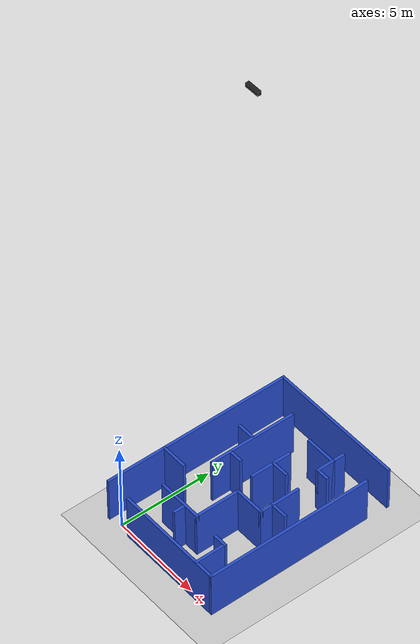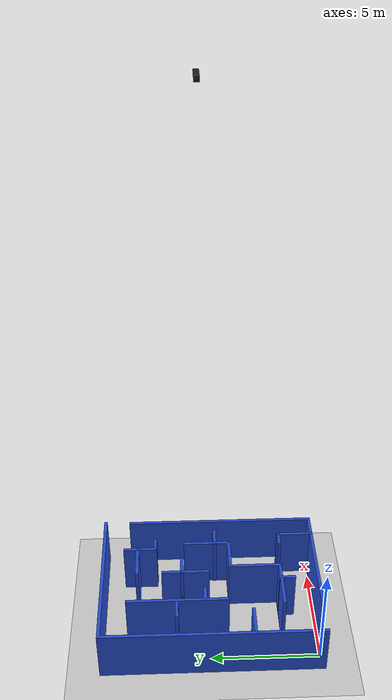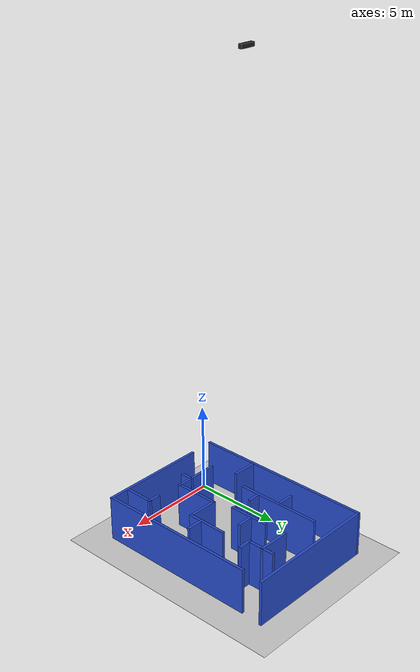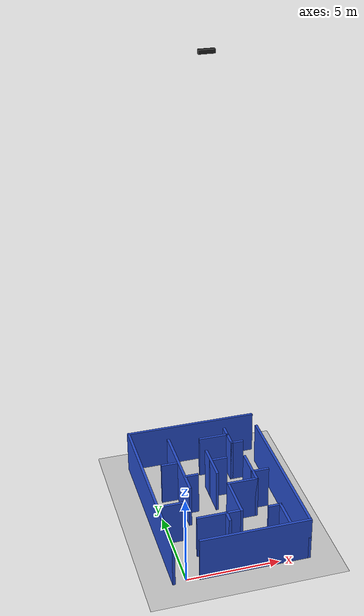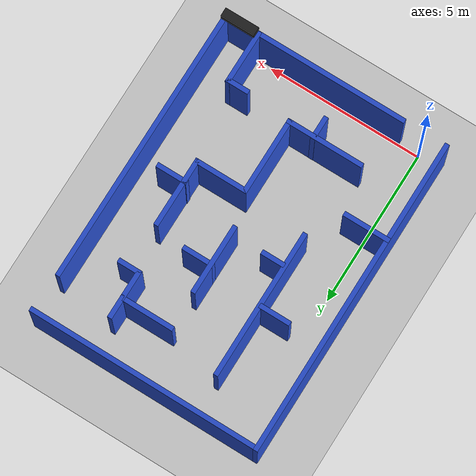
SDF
<sdf version="1.7">
 <world name="default">
  <light name="sun" type="directional">
   <pose>0 0 10 0 -0 0</pose>
   <diffuse>0.8 0.8 0.8 1</diffuse>
   <specular>0.2 0.2 0.2 1</specular>
   <attenuation>
    <range>1000</range>
    <constant>0.9</constant>
    <linear>0.01</linear>
    <quadratic>0.001</quadratic>
   </attenuation>
   <direction>-0.5 0.1 -0.9</direction>
   <spot><inner_angle>0</inner_angle><outer_angle>0</outer_angle><falloff>0</falloff></spot>
  </light>
  <model name="ground_plane">
   <static>1</static>
   <link name="link">
    <collision name="collision">
     <geometry><plane><normal>0 0 1</normal><size>100 100</size></plane></geometry>
     <surface><friction><ode><mu>100</mu><mu2>50</mu2></ode></friction></surface>
    </collision>
    <visual name="visual">
     <cast_shadows>0</cast_shadows>
     <geometry><plane><normal>0 0 1</normal><size>100 100</size></plane></geometry>
     <material>
      <script><uri>file://media/materials/scripts/gazebo.material</uri><name>Gazebo/Grey</name></script>
     </material>
    </visual>
   </link>
  </model>
  <gravity>0 0 -9.8</gravity>
  <magnetic_field>6e-06 2.3e-05 -4.2e-05</magnetic_field>
  <atmosphere type="adiabatic"/>
  <physics type="ode">
   <max_step_size>0.001</max_step_size>
   <real_time_factor>1</real_time_factor>
   <real_time_update_rate>1000</real_time_update_rate>
  </physics>
  <scene><ambient>0.4 0.4 0.4 1</ambient><background>0.7 0.7 0.7 1</background><shadows>1</shadows></scene>
  <spherical_coordinates>
   <surface_model>EARTH_WGS84</surface_model>
   <latitude_deg>0</latitude_deg>
   <longitude_deg>0</longitude_deg>
   <elevation>0</elevation>
   <heading_deg>0</heading_deg>
  </spherical_coordinates>
  <model name="obstacle_course_5">
   <pose>2.97704 4.93095 0 0 -0 0</pose>
   <link name="Wall_104">
    <collision name="Wall_104_Collision">
     <geometry><box><size>6 0.15 2.5</size></box></geometry>
     <pose>0 0 1.25 0 -0 0</pose>
    </collision>
    <visual name="Wall_104_Visual">
     <pose>0 0 1.25 0 -0 0</pose>
     <geometry><box><size>6 0.15 2.5</size></box></geometry>
     <material>
      <script><uri>file://media/materials/scripts/gazebo.material</uri><name>Gazebo/Blue</name></script>
      <ambient>0.12549 0.290196 0.529412 1</ambient>
     </material>
     <meta><layer>0</layer></meta>
    </visual>
    <pose>0.681457 -5.05025 0 0 -0 0</pose>
   </link>
   <link name="Wall_110">
    <collision name="Wall_110_Collision">
     <geometry><box><size>9 0.15 2.5</size></box></geometry>
     <pose>0 0 1.25 0 -0 0</pose>
    </collision>
    <visual name="Wall_110_Visual">
     <pose>0 0 1.25 0 -0 0</pose>
     <geometry><box><size>9 0.15 2.5</size></box></geometry>
     <material>
      <script><uri>file://media/materials/scripts/gazebo.material</uri><name>Gazebo/Blue</name></script>
      <ambient>0.12549 0.290196 0.529412 1</ambient>
     </material>
     <meta><layer>0</layer></meta>
    </visual>
    <pose>3.60646 -0.625252 0 0 -0 1.5708</pose>
   </link>
   <link name="Wall_116">
    <collision name="Wall_116_Collision">
     <geometry><box><size>4.75 0.15 2.5</size></box></geometry>
     <pose>0 0 1.25 0 -0 0</pose>
    </collision>
    <visual name="Wall_116_Visual">
     <pose>0 0 1.25 0 -0 0</pose>
     <geometry><box><size>4.75 0.15 2.5</size></box></geometry>
     <material>
      <script><uri>file://media/materials/scripts/gazebo.material</uri><name>Gazebo/Blue</name></script>
      <ambient>0.12549 0.290196 0.529412 1</ambient>
     </material>
     <meta><layer>0</layer></meta>
    </visual>
    <pose>-1.63089 1.54722 0 0 -0 -1.5708</pose>
   </link>
   <link name="Wall_118">
    <collision name="Wall_118_Collision">
     <geometry><box><size>1 0.15 2.5</size></box></geometry>
     <pose>0 0 1.25 0 -0 0</pose>
    </collision>
    <visual name="Wall_118_Visual">
     <pose>0 0 1.25 0 -0 0</pose>
     <geometry><box><size>1 0.15 2.5</size></box></geometry>
     <material>
      <script><uri>file://media/materials/scripts/gazebo.material</uri><name>Gazebo/Blue</name></script>
      <ambient>0.12549 0.290196 0.529412 1</ambient>
     </material>
     <meta><layer>0</layer></meta>
    </visual>
    <pose>-2.12416 1.59435 0 0 -0 3.14159</pose>
   </link>
   <link name="Wall_126">
    <collision name="Wall_126_Collision">
     <geometry><box><size>2.5 0.15 2.5</size></box></geometry>
     <pose>0 0 1.25 0 -0 0</pose>
    </collision>
    <visual name="Wall_126_Visual">
     <pose>0 0 1.25 0 -0 0</pose>
     <geometry><box><size>2.5 0.15 2.5</size></box></geometry>
     <material>
      <script><uri>file://media/materials/scripts/gazebo.material</uri><name>Gazebo/Blue</name></script>
      <ambient>0.12549 0.290196 0.529412 1</ambient>
     </material>
     <meta><layer>0</layer></meta>
    </visual>
    <pose>-0.728963 -3.32101 0 0 -0 0</pose>
   </link>
   <link name="Wall_127">
    <collision name="Wall_127_Collision">
     <geometry><box><size>2.5 0.15 2.5</size></box></geometry>
     <pose>0 0 1.25 0 -0 0</pose>
    </collision>
    <visual name="Wall_127_Visual">
     <pose>0 0 1.25 0 -0 0</pose>
     <geometry><box><size>2.5 0.15 2.5</size></box></geometry>
     <material>
      <script><uri>file://media/materials/scripts/gazebo.material</uri><name>Gazebo/Blue</name></script>
      <ambient>0.12549 0.290196 0.529412 1</ambient>
     </material>
     <meta><layer>0</layer></meta>
    </visual>
    <pose>0.446037 -2.14601 0 0 -0 1.5708</pose>
   </link>
   <link name="Wall_128">
    <collision name="Wall_128_Collision">
     <geometry><box><size>1.75 0.15 2.5</size></box></geometry>
     <pose>0 0 1.25 0 -0 0</pose>
    </collision>
    <visual name="Wall_128_Visual">
     <pose>0 0 1.25 0 -0 0</pose>
     <geometry><box><size>1.75 0.15 2.5</size></box></geometry>
     <material>
      <script><uri>file://media/materials/scripts/gazebo.material</uri><name>Gazebo/Blue</name></script>
      <ambient>0.12549 0.290196 0.529412 1</ambient>
     </material>
     <meta><layer>0</layer></meta>
    </visual>
    <pose>1.24604 -0.971007 0 0 -0 0</pose>
   </link>
   <link name="Wall_129">
    <collision name="Wall_129_Collision">
     <geometry><box><size>2.25 0.15 2.5</size></box></geometry>
     <pose>0 0 1.25 0 -0 0</pose>
    </collision>
    <visual name="Wall_129_Visual">
     <pose>0 0 1.25 0 -0 0</pose>
     <geometry><box><size>2.25 0.15 2.5</size></box></geometry>
     <material>
      <script><uri>file://media/materials/scripts/gazebo.material</uri><name>Gazebo/Blue</name></script>
      <ambient>0.12549 0.290196 0.529412 1</ambient>
     </material>
     <meta><layer>0</layer></meta>
    </visual>
    <pose>2.04604 0.078993 0 0 -0 1.5708</pose>
   </link>
   <link name="Wall_131">
    <collision name="Wall_131_Collision">
     <geometry><box><size>2.25 0.15 2.5</size></box></geometry>
     <pose>0 0 1.25 0 -0 0</pose>
    </collision>
    <visual name="Wall_131_Visual">
     <pose>0 0 1.25 0 -0 0</pose>
     <geometry><box><size>2.25 0.15 2.5</size></box></geometry>
     <material>
      <script><uri>file://media/materials/scripts/gazebo.material</uri><name>Gazebo/Blue</name></script>
      <ambient>0.12549 0.290196 0.529412 1</ambient>
     </material>
     <meta><layer>0</layer></meta>
    </visual>
    <pose>0.144101 1.15877 0 0 -0 -1.5708</pose>
   </link>
   <link name="Wall_133">
    <collision name="Wall_133_Collision">
     <geometry><box><size>1 0.15 2.5</size></box></geometry>
     <pose>0 0 1.25 0 -0 0</pose>
    </collision>
    <visual name="Wall_133_Visual">
     <pose>0 0 1.25 0 -0 0</pose>
     <geometry><box><size>1 0.15 2.5</size></box></geometry>
     <material>
      <script><uri>file://media/materials/scripts/gazebo.material</uri><name>Gazebo/Blue</name></script>
      <ambient>0.12549 0.290196 0.529412 1</ambient>
     </material>
     <meta><layer>0</layer></meta>
    </visual>
    <pose>0.5691 1.32127 0 0 -0 0</pose>
   </link>
   <link name="Wall_137">
    <collision name="Wall_137_Collision">
     <geometry><box><size>1.75 0.15 2.5</size></box></geometry>
     <pose>0 0 1.25 0 -0 0</pose>
    </collision>
    <visual name="Wall_137_Visual">
     <pose>0 0 1.25 0 -0 0</pose>
     <geometry><box><size>1.75 0.15 2.5</size></box></geometry>
     <material>
      <script><uri>file://media/materials/scripts/gazebo.material</uri><name>Gazebo/Blue</name></script>
      <ambient>0.12549 0.290196 0.529412 1</ambient>
     </material>
     <meta><layer>0</layer></meta>
    </visual>
    <pose>2.54058 -4.23629 0 0 -0 1.5708</pose>
   </link>
   <link name="Wall_138">
    <collision name="Wall_138_Collision">
     <geometry><box><size>0.75 0.15 2.5</size></box></geometry>
     <pose>0 0 1.25 0 -0 0</pose>
    </collision>
    <visual name="Wall_138_Visual">
     <pose>0 0 1.25 0 -0 0</pose>
     <geometry><box><size>0.75 0.15 2.5</size></box></geometry>
     <material>
      <script><uri>file://media/materials/scripts/gazebo.material</uri><name>Gazebo/Blue</name></script>
      <ambient>0.12549 0.290196 0.529412 1</ambient>
     </material>
     <meta><layer>0</layer></meta>
    </visual>
    <pose>2.24058 -3.43629 0 0 -0 3.14159</pose>
   </link>
   <link name="Wall_142">
    <collision name="Wall_142_Collision">
     <geometry><box><size>1.5 0.15 2.5</size></box></geometry>
     <pose>0 0 1.25 0 -0 0</pose>
    </collision>
    <visual name="Wall_142_Visual">
     <pose>0 0 1.25 0 -0 0</pose>
     <geometry><box><size>1.5 0.15 2.5</size></box></geometry>
     <material>
      <script><uri>file://media/materials/scripts/gazebo.material</uri><name>Gazebo/Blue</name></script>
      <ambient>0.12549 0.290196 0.529412 1</ambient>
     </material>
     <meta><layer>0</layer></meta>
    </visual>
    <pose>-2.99575 -1.87972 0 0 -0 0</pose>
   </link>
   <link name="Wall_144">
    <collision name="Wall_144_Collision">
     <geometry><box><size>1 0.15 2.5</size></box></geometry>
     <pose>0 0 1.25 0 -0 0</pose>
    </collision>
    <visual name="Wall_144_Visual">
     <pose>0 0 1.25 0 -0 0</pose>
     <geometry><box><size>1 0.15 2.5</size></box></geometry>
     <material>
      <script><uri>file://media/materials/scripts/gazebo.material</uri><name>Gazebo/Blue</name></script>
      <ambient>0.12549 0.290196 0.529412 1</ambient>
     </material>
     <meta><layer>0</layer></meta>
    </visual>
    <pose>2.45114 -0.296873 0 0 -0 0</pose>
   </link>
   <link name="Wall_146">
    <collision name="Wall_146_Collision">
     <geometry><box><size>0.75 0.15 2.5</size></box></geometry>
     <pose>0 0 1.25 0 -0 0</pose>
    </collision>
    <visual name="Wall_146_Visual">
     <pose>0 0 1.25 0 -0 0</pose>
     <geometry><box><size>0.75 0.15 2.5</size></box></geometry>
     <material>
      <script><uri>file://media/materials/scripts/gazebo.material</uri><name>Gazebo/Blue</name></script>
      <ambient>0.12549 0.290196 0.529412 1</ambient>
     </material>
     <meta><layer>0</layer></meta>
    </visual>
    <pose>-0.367879 -3.61542 0 0 -0 -1.5708</pose>
   </link>
   <link name="Wall_148">
    <collision name="Wall_148_Collision">
     <geometry><box><size>0.75 0.15 2.5</size></box></geometry>
     <pose>0 0 1.25 0 -0 0</pose>
    </collision>
    <visual name="Wall_148_Visual">
     <pose>0 0 1.25 0 -0 0</pose>
     <geometry><box><size>0.75 0.15 2.5</size></box></geometry>
     <material>
      <script><uri>file://media/materials/scripts/gazebo.material</uri><name>Gazebo/Blue</name></script>
      <ambient>0.12549 0.290196 0.529412 1</ambient>
     </material>
     <meta><layer>0</layer></meta>
    </visual>
    <pose>-1.24559 0.272144 0 0 -0 0</pose>
   </link>
   <link name="Wall_154">
    <collision name="Wall_154_Collision">
     <geometry><box><size>1.75 0.15 2.5</size></box></geometry>
     <pose>0 0 1.25 0 -0 0</pose>
    </collision>
    <visual name="Wall_154_Visual">
     <pose>0 0 1.25 0 -0 0</pose>
     <geometry><box><size>1.75 0.15 2.5</size></box></geometry>
     <material>
      <script><uri>file://media/materials/scripts/gazebo.material</uri><name>Gazebo/Blue</name></script>
      <ambient>0.12549 0.290196 0.529412 1</ambient>
     </material>
     <meta><layer>0</layer></meta>
    </visual>
    <pose>0.931045 3.43885 0 0 -0 0</pose>
   </link>
   <link name="Wall_155">
    <collision name="Wall_155_Collision">
     <geometry><box><size>0.75 0.15 2.5</size></box></geometry>
     <pose>0 0 1.25 0 -0 0</pose>
    </collision>
    <visual name="Wall_155_Visual">
     <pose>0 0 1.25 0 -0 0</pose>
     <geometry><box><size>0.75 0.15 2.5</size></box></geometry>
     <material>
      <script><uri>file://media/materials/scripts/gazebo.material</uri><name>Gazebo/Blue</name></script>
      <ambient>0.12549 0.290196 0.529412 1</ambient>
     </material>
     <meta><layer>0</layer></meta>
    </visual>
    <pose>1.73104 3.73885 0 0 -0 1.5708</pose>
   </link>
   <link name="Wall_164">
    <collision name="Wall_164_Collision">
     <geometry><box><size>1 0.15 2.5</size></box></geometry>
     <pose>0 0 1.25 0 -0 0</pose>
    </collision>
    <visual name="Wall_164_Visual">
     <pose>0 0 1.25 0 -0 0</pose>
     <geometry><box><size>1 0.15 2.5</size></box></geometry>
     <material>
      <script><uri>file://media/materials/scripts/gazebo.material</uri><name>Gazebo/Blue</name></script>
      <ambient>0.12549 0.290196 0.529412 1</ambient>
     </material>
     <meta><layer>0</layer></meta>
    </visual>
    <pose>1.73104 3.01385 0 0 -0 -1.5708</pose>
   </link>
   <link name="Wall_165">
    <collision name="Wall_165_Collision">
     <geometry><box><size>0.75 0.15 2.5</size></box></geometry>
     <pose>0 0 1.25 0 -0 0</pose>
    </collision>
    <visual name="Wall_165_Visual">
     <pose>0 0 1.25 0 -0 0</pose>
     <geometry><box><size>0.75 0.15 2.5</size></box></geometry>
     <material>
      <script><uri>file://media/materials/scripts/gazebo.material</uri><name>Gazebo/Blue</name></script>
      <ambient>0.12549 0.290196 0.529412 1</ambient>
     </material>
     <meta><layer>0</layer></meta>
    </visual>
    <pose>2.03105 2.58885 0 0 -0 0</pose>
   </link>
   <link name="Wall_95">
    <collision name="Wall_95_Collision">
     <geometry><box><size>10.25 0.15 2.5</size></box></geometry>
     <pose>0 0 1.25 0 -0 0</pose>
    </collision>
    <visual name="Wall_95_Visual">
     <pose>0 0 1.25 0 -0 0</pose>
     <geometry><box><size>10.25 0.15 2.5</size></box></geometry>
     <material>
      <script><uri>file://media/materials/scripts/gazebo.material</uri><name>Gazebo/Blue</name></script>
      <ambient>0.12549 0.290196 0.529412 1</ambient>
     </material>
     <meta><layer>0</layer></meta>
    </visual>
    <pose>-3.675 0.000252 0 0 -0 1.5708</pose>
   </link>
   <link name="Wall_96">
    <collision name="Wall_96_Collision">
     <geometry><box><size>7.5 0.15 2.5</size></box></geometry>
     <pose>0 0 1.25 0 -0 0</pose>
    </collision>
    <visual name="Wall_96_Visual">
     <pose>0 0 1.25 0 -0 0</pose>
     <geometry><box><size>7.5 0.15 2.5</size></box></geometry>
     <material>
      <script><uri>file://media/materials/scripts/gazebo.material</uri><name>Gazebo/Blue</name></script>
      <ambient>0.12549 0.290196 0.529412 1</ambient>
     </material>
     <meta><layer>0</layer></meta>
    </visual>
    <pose>0 5.05025 0 0 -0 0</pose>
   </link>
   <static>1</static>
  </model>
  <model name="overhead_camera">
   <link name="link_0">
    <inertial>
     <mass>1</mass>
     <inertia>
      <ixx>0.166667</ixx>
      <ixy>0</ixy>
      <ixz>0</ixz>
      <iyy>0.166667</iyy>
      <iyz>0</iyz>
      <izz>0.166667</izz>
     </inertia>
    </inertial>
    <pose>0 2e-06 4.4e-05 0 -0 0</pose>
    <visual name="visual">
     <geometry><box><size>0.8 0.2 0.2</size></box></geometry>
     <material>
      <lighting>1</lighting>
      <script><uri>file://media/materials/scripts/gazebo.material</uri><name>Gazebo/Black</name></script>
      <shader type="pixel"><normal_map>__default__</normal_map></shader>
      <ambient>0.3 0.3 0.3 1</ambient>
      <diffuse>0.7 0.7 0.7 1</diffuse>
      <specular>0.01 0.01 0.01 1</specular>
      <emissive>0 0 0 1</emissive>
     </material>
     <cast_shadows>0</cast_shadows>
    </visual>
    <collision name="collision">
     <geometry><box><size>0.8 0.2 0.2</size></box></geometry>
     <surface>
      <friction>
       <ode><mu>1</mu><mu2>1</mu2><fdir1>0 0 0</fdir1><slip1>0</slip1><slip2>0</slip2></ode>
       <torsional>
        <coefficient>1</coefficient>
        <patch_radius>0</patch_radius>
        <surface_radius>0</surface_radius>
        <use_patch_radius>1</use_patch_radius>
        <ode><slip>0</slip></ode>
       </torsional>
      </friction>
      <bounce><restitution_coefficient>0</restitution_coefficient><threshold>1e+06</threshold></bounce>
      <contact>
       <collide_without_contact>0</collide_without_contact>
       <collide_without_contact_bitmask>1</collide_without_contact_bitmask>
       <collide_bitmask>1</collide_bitmask>
       <ode>
        <soft_cfm>0</soft_cfm>
        <soft_erp>0.2</soft_erp>
        <kp>1e+13</kp>
        <kd>1</kd>
        <max_vel>0.01</max_vel>
        <min_depth>0</min_depth>
       </ode>
       <bullet>
        <split_impulse>1</split_impulse>
        <split_impulse_penetration_threshold>-0.01</split_impulse_penetration_threshold>
        <soft_cfm>0</soft_cfm>
        <soft_erp>0.2</soft_erp>
        <kp>1e+13</kp>
        <kd>1</kd>
       </bullet>
      </contact>
     </surface>
    </collision>
    <sensor name="upper_camera" type="camera">
     <pose>0 0 0 0 1.57 0</pose>
     <update_rate>30</update_rate>
     <visualize>1</visualize>
     <camera name="head">
      <horizontal_fov>1.0856</horizontal_fov>
      <image><width>1280</width><height>720</height><format>R8G8B8</format></image>
      <clip><near>0.03</near><far>100</far></clip>
      <noise><type>gaussian</type><mean>0</mean><stddev>0.007</stddev></noise>
     </camera>
     <plugin name="camera_controller" filename="libgazebo_ros_camera.so">
      <alwaysOn>1</alwaysOn>
      <updateRate>0.0</updateRate>
      <cameraName>rrbot/upper_camera</cameraName>
      <imageTopicName>image_raw</imageTopicName>
      <cameraInfoTopicName>camera_info</cameraInfoTopicName>
      <frameName>camera_link</frameName>
      <hackBaseline>0.07</hackBaseline>
      <distortionK1>0.0</distortionK1>
      <distortionK2>0.0</distortionK2>
      <distortionK3>0.0</distortionK3>
      <distortionT1>0.0</distortionT1>
      <distortionT2>0.0</distortionT2>
     </plugin>
    </sensor>
   </link>
   <static>1</static>
   <pose>2.7 5.4 25.4 0 -0 0</pose>
  </model>
 </world>
</sdf>
